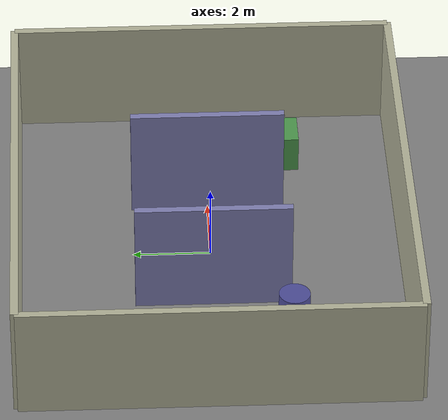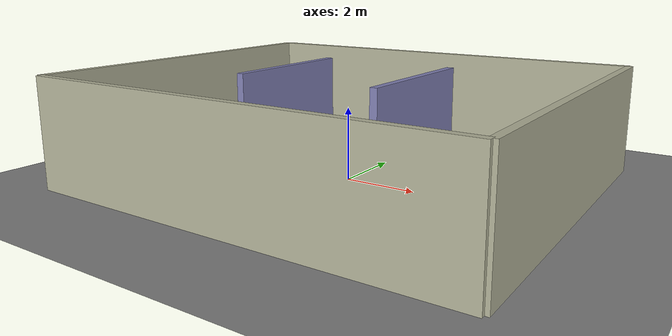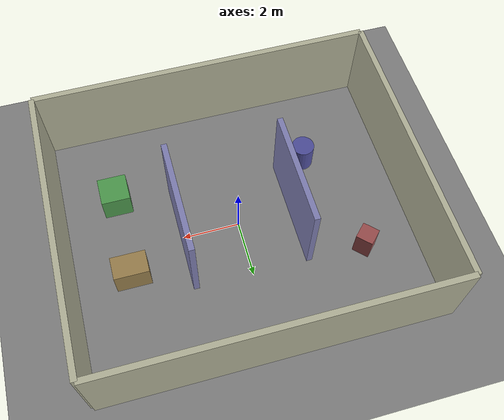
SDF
<?xml version="1.0"?>
<sdf version="1.11">
  <world name="rooms">
    <physics type="ode">
      <max_step_size>0.001</max_step_size>
      <real_time_factor>1.0</real_time_factor>
      <real_time_update_rate>1000</real_time_update_rate>
    </physics>

    <plugin name="gz::sim::systems::Physics" filename="gz-sim-physics-system"/>
    <plugin name="gz::sim::systems::UserCommands" filename="gz-sim-user-commands-system"/>
    <plugin name="gz::sim::systems::SceneBroadcaster" filename="gz-sim-scene-broadcaster-system"/>
    <plugin name="gz::sim::systems::Contact" filename="gz-sim-contact-system"/>
    <plugin name="gz::sim::systems::Imu" filename="gz-sim-imu-system"/>
    <plugin name="gz::sim::systems::Sensors" filename="gz-sim-sensors-system">
      <render_engine>ogre2</render_engine>
    </plugin>

    <gui fullscreen="false">
      <plugin name="3D View" filename="GzScene3D">
        <gz-gui>
          <title>3D View</title>
          <property type="bool" key="showTitleBar">false</property>
          <property type="string" key="state">docked</property>
        </gz-gui>
        <engine>ogre2</engine>
        <scene>scene</scene>
        <ambient_light>0.6 0.6 0.6</ambient_light>
        <background_color>0.9 0.9 0.9</background_color>
      </plugin>
      <plugin name="World control" filename="WorldControl">
        <gz-gui>
          <property type="bool" key="showTitleBar">false</property>
          <property type="bool" key="resizable">false</property>
          <property type="double" key="height">72</property>
          <property type="double" key="width">121</property>
        </gz-gui>
      </plugin>
    </gui>

    <light type="directional" name="sun">
      <cast_shadows>true</cast_shadows>
      <pose>0 0 10 0 0 0</pose>
      <diffuse>1 1 1 1</diffuse>
      <specular>0.5 0.5 0.5 1</specular>
      <attenuation>
        <range>1000</range>
        <constant>0.9</constant>
        <linear>0.01</linear>
        <quadratic>0.001</quadratic>
      </attenuation>
      <direction>-0.5 0.1 -0.9</direction>
    </light>

    <!-- 地面 -->
    <model name="ground">
      <static>true</static>
      <link name="ground_link">
        <collision name="ground_collision">
          <geometry><plane><normal>0 0 1</normal><size>60 60</size></plane></geometry>
          <surface>
            <friction><ode><mu>0.8</mu><mu2>0.8</mu2></ode></friction>
          </surface>
        </collision>
        <visual name="ground_visual">
          <geometry><plane><normal>0 0 1</normal><size>60 60</size></plane></geometry>
          <material><ambient>0.4 0.4 0.4</ambient><diffuse>0.5 0.5 0.5</diffuse></material>
        </visual>
      </link>
    </model>

    <!-- 外墙宏 -->
    <model name="wall_north">
      <static>true</static>
      <pose>0 5 1.5 0 0 0</pose>
      <link name="wall_link">
        <collision name="wall_collision">
          <geometry><box><size>12 0.2 3</size></box></geometry>
        </collision>
        <visual name="wall_visual">
          <geometry><box><size>12 0.2 3</size></box></geometry>
          <material><ambient>0.7 0.7 0.6</ambient><diffuse>0.7 0.7 0.6</diffuse></material>
        </visual>
      </link>
    </model>

    <model name="wall_south">
      <static>true</static>
      <pose>0 -5 1.5 0 0 0</pose>
      <link name="wall_link">
        <collision name="wall_collision">
          <geometry><box><size>12 0.2 3</size></box></geometry>
        </collision>
        <visual name="wall_visual">
          <geometry><box><size>12 0.2 3</size></box></geometry>
          <material><ambient>0.7 0.7 0.6</ambient><diffuse>0.7 0.7 0.6</diffuse></material>
        </visual>
      </link>
    </model>

    <model name="wall_east">
      <static>true</static>
      <pose>6 0 1.5 0 0 1.57</pose>
      <link name="wall_link">
        <collision name="wall_collision">
          <geometry><box><size>10 0.2 3</size></box></geometry>
        </collision>
        <visual name="wall_visual">
          <geometry><box><size>10 0.2 3</size></box></geometry>
          <material><ambient>0.7 0.7 0.6</ambient><diffuse>0.7 0.7 0.6</diffuse></material>
        </visual>
      </link>
    </model>

    <model name="wall_west">
      <static>true</static>
      <pose>-6 0 1.5 0 0 1.57</pose>
      <link name="wall_link">
        <collision name="wall_collision">
          <geometry><box><size>10 0.2 3</size></box></geometry>
        </collision>
        <visual name="wall_visual">
          <geometry><box><size>10 0.2 3</size></box></geometry>
          <material><ambient>0.7 0.7 0.6</ambient><diffuse>0.7 0.7 0.6</diffuse></material>
        </visual>
      </link>
    </model>

    <!-- 内墙——走廊 -->
    <model name="inner_wall_left">
      <static>true</static>
      <pose>-2 0 1.5 0 0 0</pose>
      <link name="wall_link">
        <collision name="wall_collision">
          <geometry><box><size>0.2 4 3</size></box></geometry>
        </collision>
        <visual name="wall_visual">
          <geometry><box><size>0.2 4 3</size></box></geometry>
          <material><ambient>0.5 0.5 0.7</ambient><diffuse>0.5 0.5 0.7</diffuse></material>
        </visual>
      </link>
    </model>

    <model name="inner_wall_right">
      <static>true</static>
      <pose>2 0 1.5 0 0 0</pose>
      <link name="wall_link">
        <collision name="wall_collision">
          <geometry><box><size>0.2 4 3</size></box></geometry>
        </collision>
        <visual name="wall_visual">
          <geometry><box><size>0.2 4 3</size></box></geometry>
          <material><ambient>0.5 0.5 0.7</ambient><diffuse>0.5 0.5 0.7</diffuse></material>
        </visual>
      </link>
    </model>

    <!-- 房间里的障碍物 -->
    <model name="block_1">
      <static>true</static>
      <pose>4 -2 0.5 0 0 0</pose>
      <link name="block_link">
        <collision name="block_collision">
          <geometry><box><size>1 1 1</size></box></geometry>
        </collision>
        <visual name="block_visual">
          <geometry><box><size>1 1 1</size></box></geometry>
          <material><ambient>0.3 0.6 0.3</ambient><diffuse>0.3 0.6 0.3</diffuse></material>
        </visual>
      </link>
    </model>

    <model name="block_2">
      <static>true</static>
      <pose>-4 2 0.5 0 0 0.785</pose>
      <link name="block_link">
        <collision name="block_collision">
          <geometry><box><size>0.6 0.6 1</size></box></geometry>
        </collision>
        <visual name="block_visual">
          <geometry><box><size>0.6 0.6 1</size></box></geometry>
          <material><ambient>0.6 0.3 0.3</ambient><diffuse>0.6 0.3 0.3</diffuse></material>
        </visual>
      </link>
    </model>

    <model name="cylinder_1">
      <static>true</static>
      <pose>-3 -2 0.5 0 0 0</pose>
      <link name="cylinder_link">
        <collision name="cylinder_collision">
          <geometry><cylinder><radius>0.4</radius><length>1</length></cylinder></geometry>
        </collision>
        <visual name="cylinder_visual">
          <geometry><cylinder><radius>0.4</radius><length>1</length></cylinder></geometry>
          <material><ambient>0.3 0.3 0.6</ambient><diffuse>0.3 0.3 0.6</diffuse></material>
        </visual>
      </link>
    </model>

    <model name="block_3">
      <static>true</static>
      <pose>4 1 0.5 0 0 0</pose>
      <link name="block_link">
        <collision name="block_collision">
          <geometry><box><size>1.2 0.8 1</size></box></geometry>
        </collision>
        <visual name="block_visual">
          <geometry><box><size>1.2 0.8 1</size></box></geometry>
          <material><ambient>0.6 0.5 0.3</ambient><diffuse>0.6 0.5 0.3</diffuse></material>
        </visual>
      </link>
    </model>

  </world>
</sdf>
